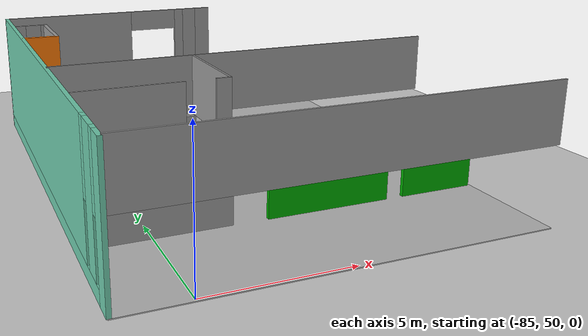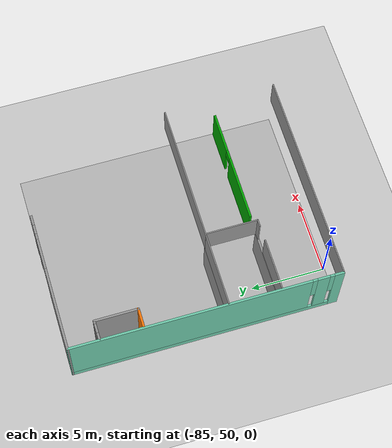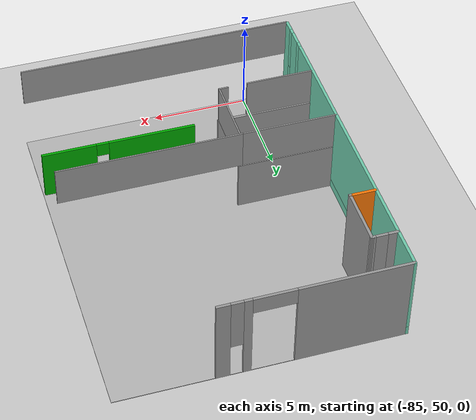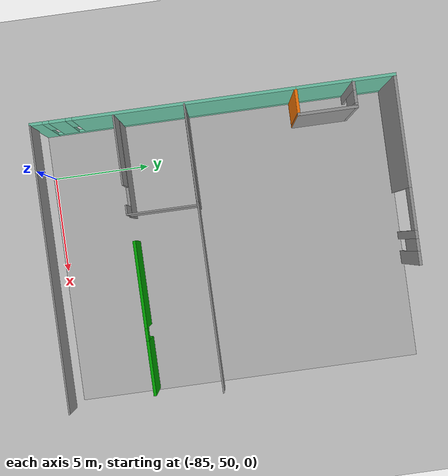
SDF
<sdf version="1.7">
 <world name="default">
  <model name="ground_plane">
   <static>1</static>
   <link name="link">
    <collision name="collision">
     <geometry><plane><normal>0 0 1</normal><size>100 100</size></plane></geometry>
     <surface><friction><ode><mu>100</mu><mu2>50</mu2></ode></friction></surface>
    </collision>
    <visual name="visual">
     <cast_shadows>0</cast_shadows>
     <geometry><plane><normal>0 0 1</normal><size>100 100</size></plane></geometry>
     <material>
      <script><uri>file://media/materials/scripts/gazebo.material</uri><name>Gazebo/Grey</name></script>
     </material>
    </visual>
   </link>
  </model>
  <model name="44444444443osrf_elevator">
   <link name="Wall_0">
    <pose>-7.17647 0.013004 0 0 -0 1.57174</pose>
    <visual name="Wall_0_Visual_1">
     <meta><layer>0</layer></meta>
     <pose>0.331828 0 0.25 0 -0 0</pose>
     <geometry><box><size>17.4519 0.15 0.5</size></box></geometry>
     <material>
      <script><uri>file://media/materials/scripts/gazebo.material</uri><name>Gazebo/Grey</name></script>
      <ambient>0.435294 0.796078 0.67451 1</ambient>
      <shader type="pixel"/>
     </material>
    </visual>
    <visual name="Wall_0_Visual_0">
     <meta><layer>0</layer></meta>
     <pose>-8.72596 0 2.4385 0 -0 0</pose>
     <geometry><box><size>0.663656 0.15 4.877</size></box></geometry>
     <material>
      <script><uri>file://media/materials/scripts/gazebo.material</uri><name>Gazebo/Grey</name></script>
      <ambient>0.435294 0.796078 0.67451 1</ambient>
      <shader type="pixel"/>
     </material>
    </visual>
    <visual name="Wall_0_Visual_3">
     <meta><layer>0</layer></meta>
     <pose>1.05709 0 2.6885 0 -0 0</pose>
     <geometry><box><size>16.0014 0.15 4.377</size></box></geometry>
     <material>
      <script><uri>file://media/materials/scripts/gazebo.material</uri><name>Gazebo/Grey</name></script>
      <ambient>0.435294 0.796078 0.67451 1</ambient>
      <shader type="pixel"/>
     </material>
    </visual>
    <visual name="Wall_0_Visual_2">
     <meta><layer>0</layer></meta>
     <pose>-7.67281 0 2.6885 0 -0 0</pose>
     <geometry><box><size>0.816657 0.15 4.377</size></box></geometry>
     <material>
      <script><uri>file://media/materials/scripts/gazebo.material</uri><name>Gazebo/Grey</name></script>
      <ambient>0.435294 0.796078 0.67451 1</ambient>
      <shader type="pixel"/>
     </material>
    </visual>
    <visual name="Wall_0_Visual_4">
     <meta><layer>0</layer></meta>
     <pose>-8.23763 0 3.6885 0 -0 0</pose>
     <geometry><box><size>0.313 0.15 2.377</size></box></geometry>
     <material>
      <script><uri>file://media/materials/scripts/gazebo.material</uri><name>Gazebo/Grey</name></script>
      <ambient>0.435294 0.796078 0.67451 1</ambient>
      <shader type="pixel"/>
     </material>
    </visual>
    <visual name="Wall_0_Visual_5">
     <meta><layer>0</layer></meta>
     <pose>-7.10405 0 3.6885 0 -0 0</pose>
     <geometry><box><size>0.320861 0.15 2.377</size></box></geometry>
     <material>
      <script><uri>file://media/materials/scripts/gazebo.material</uri><name>Gazebo/Grey</name></script>
      <ambient>0.435294 0.796078 0.67451 1</ambient>
      <shader type="pixel"/>
     </material>
    </visual>
    <collision name="Wall_0_Collision_0">
     <pose>-8.72596 0 2.4385 0 -0 0</pose>
     <geometry><box><size>0.663656 0.15 4.877</size></box></geometry>
     <surface>
      <friction>
       <ode><mu>1</mu><mu2>1</mu2><fdir1>0 0 0</fdir1><slip1>0</slip1><slip2>0</slip2></ode>
       <torsional>
        <coefficient>1</coefficient>
        <patch_radius>0</patch_radius>
        <surface_radius>0</surface_radius>
        <use_patch_radius>1</use_patch_radius>
        <ode><slip>0</slip></ode>
       </torsional>
      </friction>
      <bounce><restitution_coefficient>0</restitution_coefficient><threshold>1e+06</threshold></bounce>
      <contact>
       <collide_without_contact>0</collide_without_contact>
       <collide_without_contact_bitmask>1</collide_without_contact_bitmask>
       <collide_bitmask>1</collide_bitmask>
       <ode>
        <soft_cfm>0</soft_cfm>
        <soft_erp>0.2</soft_erp>
        <kp>1e+13</kp>
        <kd>1</kd>
        <max_vel>0.01</max_vel>
        <min_depth>0</min_depth>
       </ode>
       <bullet>
        <split_impulse>1</split_impulse>
        <split_impulse_penetration_threshold>-0.01</split_impulse_penetration_threshold>
        <soft_cfm>0</soft_cfm>
        <soft_erp>0.2</soft_erp>
        <kp>1e+13</kp>
        <kd>1</kd>
       </bullet>
      </contact>
     </surface>
    </collision>
    <collision name="Wall_0_Collision_5">
     <pose>-7.10405 0 3.6885 0 -0 0</pose>
     <geometry><box><size>0.320861 0.15 2.377</size></box></geometry>
     <surface>
      <friction>
       <ode><mu>1</mu><mu2>1</mu2><fdir1>0 0 0</fdir1><slip1>0</slip1><slip2>0</slip2></ode>
       <torsional>
        <coefficient>1</coefficient>
        <patch_radius>0</patch_radius>
        <surface_radius>0</surface_radius>
        <use_patch_radius>1</use_patch_radius>
        <ode><slip>0</slip></ode>
       </torsional>
      </friction>
      <bounce><restitution_coefficient>0</restitution_coefficient><threshold>1e+06</threshold></bounce>
      <contact>
       <collide_without_contact>0</collide_without_contact>
       <collide_without_contact_bitmask>1</collide_without_contact_bitmask>
       <collide_bitmask>1</collide_bitmask>
       <ode>
        <soft_cfm>0</soft_cfm>
        <soft_erp>0.2</soft_erp>
        <kp>1e+13</kp>
        <kd>1</kd>
        <max_vel>0.01</max_vel>
        <min_depth>0</min_depth>
       </ode>
       <bullet>
        <split_impulse>1</split_impulse>
        <split_impulse_penetration_threshold>-0.01</split_impulse_penetration_threshold>
        <soft_cfm>0</soft_cfm>
        <soft_erp>0.2</soft_erp>
        <kp>1e+13</kp>
        <kd>1</kd>
       </bullet>
      </contact>
     </surface>
    </collision>
    <collision name="Wall_0_Collision_1">
     <pose>0.331828 0 0.25 0 -0 0</pose>
     <geometry><box><size>17.4519 0.15 0.5</size></box></geometry>
     <surface>
      <friction>
       <ode><mu>1</mu><mu2>1</mu2><fdir1>0 0 0</fdir1><slip1>0</slip1><slip2>0</slip2></ode>
       <torsional>
        <coefficient>1</coefficient>
        <patch_radius>0</patch_radius>
        <surface_radius>0</surface_radius>
        <use_patch_radius>1</use_patch_radius>
        <ode><slip>0</slip></ode>
       </torsional>
      </friction>
      <bounce><restitution_coefficient>0</restitution_coefficient><threshold>1e+06</threshold></bounce>
      <contact>
       <collide_without_contact>0</collide_without_contact>
       <collide_without_contact_bitmask>1</collide_without_contact_bitmask>
       <collide_bitmask>1</collide_bitmask>
       <ode>
        <soft_cfm>0</soft_cfm>
        <soft_erp>0.2</soft_erp>
        <kp>1e+13</kp>
        <kd>1</kd>
        <max_vel>0.01</max_vel>
        <min_depth>0</min_depth>
       </ode>
       <bullet>
        <split_impulse>1</split_impulse>
        <split_impulse_penetration_threshold>-0.01</split_impulse_penetration_threshold>
        <soft_cfm>0</soft_cfm>
        <soft_erp>0.2</soft_erp>
        <kp>1e+13</kp>
        <kd>1</kd>
       </bullet>
      </contact>
     </surface>
    </collision>
    <collision name="Wall_0_Collision_2">
     <pose>-7.67281 0 2.6885 0 -0 0</pose>
     <geometry><box><size>0.816657 0.15 4.377</size></box></geometry>
     <surface>
      <friction>
       <ode><mu>1</mu><mu2>1</mu2><fdir1>0 0 0</fdir1><slip1>0</slip1><slip2>0</slip2></ode>
       <torsional>
        <coefficient>1</coefficient>
        <patch_radius>0</patch_radius>
        <surface_radius>0</surface_radius>
        <use_patch_radius>1</use_patch_radius>
        <ode><slip>0</slip></ode>
       </torsional>
      </friction>
      <bounce><restitution_coefficient>0</restitution_coefficient><threshold>1e+06</threshold></bounce>
      <contact>
       <collide_without_contact>0</collide_without_contact>
       <collide_without_contact_bitmask>1</collide_without_contact_bitmask>
       <collide_bitmask>1</collide_bitmask>
       <ode>
        <soft_cfm>0</soft_cfm>
        <soft_erp>0.2</soft_erp>
        <kp>1e+13</kp>
        <kd>1</kd>
        <max_vel>0.01</max_vel>
        <min_depth>0</min_depth>
       </ode>
       <bullet>
        <split_impulse>1</split_impulse>
        <split_impulse_penetration_threshold>-0.01</split_impulse_penetration_threshold>
        <soft_cfm>0</soft_cfm>
        <soft_erp>0.2</soft_erp>
        <kp>1e+13</kp>
        <kd>1</kd>
       </bullet>
      </contact>
     </surface>
    </collision>
    <collision name="Wall_0_Collision_3">
     <pose>1.05709 0 2.6885 0 -0 0</pose>
     <geometry><box><size>16.0014 0.15 4.377</size></box></geometry>
     <surface>
      <friction>
       <ode><mu>1</mu><mu2>1</mu2><fdir1>0 0 0</fdir1><slip1>0</slip1><slip2>0</slip2></ode>
       <torsional>
        <coefficient>1</coefficient>
        <patch_radius>0</patch_radius>
        <surface_radius>0</surface_radius>
        <use_patch_radius>1</use_patch_radius>
        <ode><slip>0</slip></ode>
       </torsional>
      </friction>
      <bounce><restitution_coefficient>0</restitution_coefficient><threshold>1e+06</threshold></bounce>
      <contact>
       <collide_without_contact>0</collide_without_contact>
       <collide_without_contact_bitmask>1</collide_without_contact_bitmask>
       <collide_bitmask>1</collide_bitmask>
       <ode>
        <soft_cfm>0</soft_cfm>
        <soft_erp>0.2</soft_erp>
        <kp>1e+13</kp>
        <kd>1</kd>
        <max_vel>0.01</max_vel>
        <min_depth>0</min_depth>
       </ode>
       <bullet>
        <split_impulse>1</split_impulse>
        <split_impulse_penetration_threshold>-0.01</split_impulse_penetration_threshold>
        <soft_cfm>0</soft_cfm>
        <soft_erp>0.2</soft_erp>
        <kp>1e+13</kp>
        <kd>1</kd>
       </bullet>
      </contact>
     </surface>
    </collision>
    <collision name="Wall_0_Collision_4">
     <pose>-8.23763 0 3.6885 0 -0 0</pose>
     <geometry><box><size>0.313 0.15 2.377</size></box></geometry>
     <surface>
      <friction>
       <ode><mu>1</mu><mu2>1</mu2><fdir1>0 0 0</fdir1><slip1>0</slip1><slip2>0</slip2></ode>
       <torsional>
        <coefficient>1</coefficient>
        <patch_radius>0</patch_radius>
        <surface_radius>0</surface_radius>
        <use_patch_radius>1</use_patch_radius>
        <ode><slip>0</slip></ode>
       </torsional>
      </friction>
      <bounce><restitution_coefficient>0</restitution_coefficient><threshold>1e+06</threshold></bounce>
      <contact>
       <collide_without_contact>0</collide_without_contact>
       <collide_without_contact_bitmask>1</collide_without_contact_bitmask>
       <collide_bitmask>1</collide_bitmask>
       <ode>
        <soft_cfm>0</soft_cfm>
        <soft_erp>0.2</soft_erp>
        <kp>1e+13</kp>
        <kd>1</kd>
        <max_vel>0.01</max_vel>
        <min_depth>0</min_depth>
       </ode>
       <bullet>
        <split_impulse>1</split_impulse>
        <split_impulse_penetration_threshold>-0.01</split_impulse_penetration_threshold>
        <soft_cfm>0</soft_cfm>
        <soft_erp>0.2</soft_erp>
        <kp>1e+13</kp>
        <kd>1</kd>
       </bullet>
      </contact>
     </surface>
    </collision>
   </link>
   <link name="Wall_10">
    <pose>3.11003 -4.9485 0 0 -0 0</pose>
    <visual name="Wall_10_Visual_0">
     <meta><layer>0</layer></meta>
     <pose>-1.73626 0 1.3715 0 -0 0</pose>
     <geometry><box><size>4.52747 0.15 2.743</size></box></geometry>
     <material>
      <script><uri>file://media/materials/scripts/gazebo.material</uri><name>Gazebo/Grey</name></script>
      <ambient>0 0.666667 0 1</ambient>
      <shader type="pixel"/>
     </material>
    </visual>
    <visual name="Wall_10_Visual_2">
     <meta><layer>0</layer></meta>
     <pose>0.85068 0 2.3715 0 -0 0</pose>
     <geometry><box><size>0.646413 0.15 0.743</size></box></geometry>
     <material>
      <script><uri>file://media/materials/scripts/gazebo.material</uri><name>Gazebo/Grey</name></script>
      <ambient>0 0.666667 0 1</ambient>
      <shader type="pixel"/>
     </material>
    </visual>
    <visual name="Wall_10_Visual_1">
     <meta><layer>0</layer></meta>
     <pose>2.58694 0 1.3715 0 -0 0</pose>
     <geometry><box><size>2.82611 0.15 2.743</size></box></geometry>
     <material>
      <script><uri>file://media/materials/scripts/gazebo.material</uri><name>Gazebo/Grey</name></script>
      <ambient>0 0.666667 0 1</ambient>
      <shader type="pixel"/>
     </material>
    </visual>
    <collision name="Wall_10_Collision_0">
     <pose>-1.73626 0 1.3715 0 -0 0</pose>
     <geometry><box><size>4.52747 0.15 2.743</size></box></geometry>
     <surface>
      <friction>
       <ode><mu>1</mu><mu2>1</mu2><fdir1>0 0 0</fdir1><slip1>0</slip1><slip2>0</slip2></ode>
       <torsional>
        <coefficient>1</coefficient>
        <patch_radius>0</patch_radius>
        <surface_radius>0</surface_radius>
        <use_patch_radius>1</use_patch_radius>
        <ode><slip>0</slip></ode>
       </torsional>
      </friction>
      <bounce><restitution_coefficient>0</restitution_coefficient><threshold>1e+06</threshold></bounce>
      <contact>
       <collide_without_contact>0</collide_without_contact>
       <collide_without_contact_bitmask>1</collide_without_contact_bitmask>
       <collide_bitmask>1</collide_bitmask>
       <ode>
        <soft_cfm>0</soft_cfm>
        <soft_erp>0.2</soft_erp>
        <kp>1e+13</kp>
        <kd>1</kd>
        <max_vel>0.01</max_vel>
        <min_depth>0</min_depth>
       </ode>
       <bullet>
        <split_impulse>1</split_impulse>
        <split_impulse_penetration_threshold>-0.01</split_impulse_penetration_threshold>
        <soft_cfm>0</soft_cfm>
        <soft_erp>0.2</soft_erp>
        <kp>1e+13</kp>
        <kd>1</kd>
       </bullet>
      </contact>
     </surface>
    </collision>
    <collision name="Wall_10_Collision_1">
     <pose>2.58694 0 1.3715 0 -0 0</pose>
     <geometry><box><size>2.82611 0.15 2.743</size></box></geometry>
     <surface>
      <friction>
       <ode><mu>1</mu><mu2>1</mu2><fdir1>0 0 0</fdir1><slip1>0</slip1><slip2>0</slip2></ode>
       <torsional>
        <coefficient>1</coefficient>
        <patch_radius>0</patch_radius>
        <surface_radius>0</surface_radius>
        <use_patch_radius>1</use_patch_radius>
        <ode><slip>0</slip></ode>
       </torsional>
      </friction>
      <bounce><restitution_coefficient>0</restitution_coefficient><threshold>1e+06</threshold></bounce>
      <contact>
       <collide_without_contact>0</collide_without_contact>
       <collide_without_contact_bitmask>1</collide_without_contact_bitmask>
       <collide_bitmask>1</collide_bitmask>
       <ode>
        <soft_cfm>0</soft_cfm>
        <soft_erp>0.2</soft_erp>
        <kp>1e+13</kp>
        <kd>1</kd>
        <max_vel>0.01</max_vel>
        <min_depth>0</min_depth>
       </ode>
       <bullet>
        <split_impulse>1</split_impulse>
        <split_impulse_penetration_threshold>-0.01</split_impulse_penetration_threshold>
        <soft_cfm>0</soft_cfm>
        <soft_erp>0.2</soft_erp>
        <kp>1e+13</kp>
        <kd>1</kd>
       </bullet>
      </contact>
     </surface>
    </collision>
    <collision name="Wall_10_Collision_2">
     <pose>0.85068 0 2.3715 0 -0 0</pose>
     <geometry><box><size>0.646413 0.15 0.743</size></box></geometry>
     <surface>
      <friction>
       <ode><mu>1</mu><mu2>1</mu2><fdir1>0 0 0</fdir1><slip1>0</slip1><slip2>0</slip2></ode>
       <torsional>
        <coefficient>1</coefficient>
        <patch_radius>0</patch_radius>
        <surface_radius>0</surface_radius>
        <use_patch_radius>1</use_patch_radius>
        <ode><slip>0</slip></ode>
       </torsional>
      </friction>
      <bounce><restitution_coefficient>0</restitution_coefficient><threshold>1e+06</threshold></bounce>
      <contact>
       <collide_without_contact>0</collide_without_contact>
       <collide_without_contact_bitmask>1</collide_without_contact_bitmask>
       <collide_bitmask>1</collide_bitmask>
       <ode>
        <soft_cfm>0</soft_cfm>
        <soft_erp>0.2</soft_erp>
        <kp>1e+13</kp>
        <kd>1</kd>
        <max_vel>0.01</max_vel>
        <min_depth>0</min_depth>
       </ode>
       <bullet>
        <split_impulse>1</split_impulse>
        <split_impulse_penetration_threshold>-0.01</split_impulse_penetration_threshold>
        <soft_cfm>0</soft_cfm>
        <soft_erp>0.2</soft_erp>
        <kp>1e+13</kp>
        <kd>1</kd>
       </bullet>
      </contact>
     </surface>
    </collision>
   </link>
   <link name="Wall_16">
    <pose>-4.68247 -1.4425 0 0 -0 0</pose>
    <visual name="Wall_16_Visual">
     <meta><layer>0</layer></meta>
     <pose>0 0 1.3715 0 -0 0</pose>
     <geometry><box><size>5.12727 0.15 2.743</size></box></geometry>
     <material>
      <script><uri>file://media/materials/scripts/gazebo.material</uri><name>Gazebo/Grey</name></script>
      <ambient>1 1 1 1</ambient>
      <shader type="pixel"/>
     </material>
    </visual>
    <collision name="Wall_16_Collision">
     <pose>0 0 1.3715 0 -0 0</pose>
     <geometry><box><size>5.12727 0.15 2.743</size></box></geometry>
     <surface>
      <friction>
       <ode><mu>1</mu><mu2>1</mu2><fdir1>0 0 0</fdir1><slip1>0</slip1><slip2>0</slip2></ode>
       <torsional>
        <coefficient>1</coefficient>
        <patch_radius>0</patch_radius>
        <surface_radius>0</surface_radius>
        <use_patch_radius>1</use_patch_radius>
        <ode><slip>0</slip></ode>
       </torsional>
      </friction>
      <bounce><restitution_coefficient>0</restitution_coefficient><threshold>1e+06</threshold></bounce>
      <contact>
       <collide_without_contact>0</collide_without_contact>
       <collide_without_contact_bitmask>1</collide_without_contact_bitmask>
       <collide_bitmask>1</collide_bitmask>
       <ode>
        <soft_cfm>0</soft_cfm>
        <soft_erp>0.2</soft_erp>
        <kp>1e+13</kp>
        <kd>1</kd>
        <max_vel>0.01</max_vel>
        <min_depth>0</min_depth>
       </ode>
       <bullet>
        <split_impulse>1</split_impulse>
        <split_impulse_penetration_threshold>-0.01</split_impulse_penetration_threshold>
        <soft_cfm>0</soft_cfm>
        <soft_erp>0.2</soft_erp>
        <kp>1e+13</kp>
        <kd>1</kd>
       </bullet>
      </contact>
     </surface>
    </collision>
   </link>
   <link name="Wall_18">
    <pose>-4.61297 -4.9275 0 0 -0 3.14159</pose>
    <visual name="Wall_18_Visual">
     <meta><layer>0</layer></meta>
     <pose>0 0 1.3715 0 -0 0</pose>
     <geometry><box><size>5 0.15 2.743</size></box></geometry>
     <material>
      <script><uri>file://media/materials/scripts/gazebo.material</uri><name>Gazebo/Grey</name></script>
      <ambient>1 1 1 1</ambient>
      <shader type="pixel"/>
     </material>
    </visual>
    <collision name="Wall_18_Collision">
     <pose>0 0 1.3715 0 -0 0</pose>
     <geometry><box><size>5 0.15 2.743</size></box></geometry>
     <surface>
      <friction>
       <ode><mu>1</mu><mu2>1</mu2><fdir1>0 0 0</fdir1><slip1>0</slip1><slip2>0</slip2></ode>
       <torsional>
        <coefficient>1</coefficient>
        <patch_radius>0</patch_radius>
        <surface_radius>0</surface_radius>
        <use_patch_radius>1</use_patch_radius>
        <ode><slip>0</slip></ode>
       </torsional>
      </friction>
      <bounce><restitution_coefficient>0</restitution_coefficient><threshold>1e+06</threshold></bounce>
      <contact>
       <collide_without_contact>0</collide_without_contact>
       <collide_without_contact_bitmask>1</collide_without_contact_bitmask>
       <collide_bitmask>1</collide_bitmask>
       <ode>
        <soft_cfm>0</soft_cfm>
        <soft_erp>0.2</soft_erp>
        <kp>1e+13</kp>
        <kd>1</kd>
        <max_vel>0.01</max_vel>
        <min_depth>0</min_depth>
       </ode>
       <bullet>
        <split_impulse>1</split_impulse>
        <split_impulse_penetration_threshold>-0.01</split_impulse_penetration_threshold>
        <soft_cfm>0</soft_cfm>
        <soft_erp>0.2</soft_erp>
        <kp>1e+13</kp>
        <kd>1</kd>
       </bullet>
      </contact>
     </surface>
    </collision>
   </link>
   <link name="Wall_29">
    <pose>-6.49697 4.1045 0 0 -0 0</pose>
    <visual name="Wall_29_Visual">
     <meta><layer>0</layer></meta>
     <pose>0 0 2.4385 0 -0 0</pose>
     <geometry><box><size>1.39187 0.15 4.877</size></box></geometry>
     <material>
      <script><uri>file://media/materials/scripts/gazebo.material</uri><name>Gazebo/Grey</name></script>
      <ambient>0.996078 0.47451 0.0196078 1</ambient>
      <shader type="pixel"/>
     </material>
    </visual>
    <collision name="Wall_29_Collision">
     <pose>0 0 2.4385 0 -0 0</pose>
     <geometry><box><size>1.39187 0.15 4.877</size></box></geometry>
     <surface>
      <friction>
       <ode><mu>1</mu><mu2>1</mu2><fdir1>0 0 0</fdir1><slip1>0</slip1><slip2>0</slip2></ode>
       <torsional>
        <coefficient>1</coefficient>
        <patch_radius>0</patch_radius>
        <surface_radius>0</surface_radius>
        <use_patch_radius>1</use_patch_radius>
        <ode><slip>0</slip></ode>
       </torsional>
      </friction>
      <bounce><restitution_coefficient>0</restitution_coefficient><threshold>1e+06</threshold></bounce>
      <contact>
       <collide_without_contact>0</collide_without_contact>
       <collide_without_contact_bitmask>1</collide_without_contact_bitmask>
       <collide_bitmask>1</collide_bitmask>
       <ode>
        <soft_cfm>0</soft_cfm>
        <soft_erp>0.2</soft_erp>
        <kp>1e+13</kp>
        <kd>1</kd>
        <max_vel>0.01</max_vel>
        <min_depth>0</min_depth>
       </ode>
       <bullet>
        <split_impulse>1</split_impulse>
        <split_impulse_penetration_threshold>-0.01</split_impulse_penetration_threshold>
        <soft_cfm>0</soft_cfm>
        <soft_erp>0.2</soft_erp>
        <kp>1e+13</kp>
        <kd>1</kd>
       </bullet>
      </contact>
     </surface>
    </collision>
   </link>
   <link name="Wall_30">
    <pose>-5.87597 5.5295 0 0 -0 1.5708</pose>
    <visual name="Wall_30_Visual">
     <meta><layer>0</layer></meta>
     <pose>0 0 2.4385 0 -0 0</pose>
     <geometry><box><size>3 0.15 4.877</size></box></geometry>
     <material>
      <script><uri>file://media/materials/scripts/gazebo.material</uri><name>Gazebo/Grey</name></script>
      <ambient>1 1 1 1</ambient>
      <shader type="pixel"/>
     </material>
    </visual>
    <collision name="Wall_30_Collision">
     <pose>0 0 2.4385 0 -0 0</pose>
     <geometry><box><size>3 0.15 4.877</size></box></geometry>
     <surface>
      <friction>
       <ode><mu>1</mu><mu2>1</mu2><fdir1>0 0 0</fdir1><slip1>0</slip1><slip2>0</slip2></ode>
       <torsional>
        <coefficient>1</coefficient>
        <patch_radius>0</patch_radius>
        <surface_radius>0</surface_radius>
        <use_patch_radius>1</use_patch_radius>
        <ode><slip>0</slip></ode>
       </torsional>
      </friction>
      <bounce><restitution_coefficient>0</restitution_coefficient><threshold>1e+06</threshold></bounce>
      <contact>
       <collide_without_contact>0</collide_without_contact>
       <collide_without_contact_bitmask>1</collide_without_contact_bitmask>
       <collide_bitmask>1</collide_bitmask>
       <ode>
        <soft_cfm>0</soft_cfm>
        <soft_erp>0.2</soft_erp>
        <kp>1e+13</kp>
        <kd>1</kd>
        <max_vel>0.01</max_vel>
        <min_depth>0</min_depth>
       </ode>
       <bullet>
        <split_impulse>1</split_impulse>
        <split_impulse_penetration_threshold>-0.01</split_impulse_penetration_threshold>
        <soft_cfm>0</soft_cfm>
        <soft_erp>0.2</soft_erp>
        <kp>1e+13</kp>
        <kd>1</kd>
       </bullet>
      </contact>
     </surface>
    </collision>
   </link>
   <link name="Wall_31">
    <pose>-6.50397 6.9525 0 0 0 -3.13841</pose>
    <visual name="Wall_31_Visual_0">
     <meta><layer>0</layer></meta>
     <pose>-0.567544 0 2.4385 0 -0 0</pose>
     <geometry><box><size>0.271575 0.15 4.877</size></box></geometry>
     <material>
      <script><uri>file://media/materials/scripts/gazebo.material</uri><name>Gazebo/Grey</name></script>
      <ambient>1 1 1 1</ambient>
      <shader type="pixel"/>
     </material>
    </visual>
    <visual name="Wall_31_Visual_1">
     <meta><layer>0</layer></meta>
     <pose>0.441678 0 2.4385 0 -0 0</pose>
     <geometry><box><size>0.523307 0.15 4.877</size></box></geometry>
     <material>
      <script><uri>file://media/materials/scripts/gazebo.material</uri><name>Gazebo/Grey</name></script>
      <ambient>1 1 1 1</ambient>
      <shader type="pixel"/>
     </material>
    </visual>
    <visual name="Wall_31_Visual_3">
     <meta><layer>0</layer></meta>
     <pose>-0.125866 0 3.4385 0 -0 0</pose>
     <geometry><box><size>0.611781 0.15 2.877</size></box></geometry>
     <material>
      <script><uri>file://media/materials/scripts/gazebo.material</uri><name>Gazebo/Grey</name></script>
      <ambient>1 1 1 1</ambient>
      <shader type="pixel"/>
     </material>
    </visual>
    <collision name="Wall_31_Collision_0">
     <pose>-0.567544 0 2.4385 0 -0 0</pose>
     <geometry><box><size>0.271575 0.15 4.877</size></box></geometry>
     <surface>
      <friction>
       <ode><mu>1</mu><mu2>1</mu2><fdir1>0 0 0</fdir1><slip1>0</slip1><slip2>0</slip2></ode>
       <torsional>
        <coefficient>1</coefficient>
        <patch_radius>0</patch_radius>
        <surface_radius>0</surface_radius>
        <use_patch_radius>1</use_patch_radius>
        <ode><slip>0</slip></ode>
       </torsional>
      </friction>
      <bounce><restitution_coefficient>0</restitution_coefficient><threshold>1e+06</threshold></bounce>
      <contact>
       <collide_without_contact>0</collide_without_contact>
       <collide_without_contact_bitmask>1</collide_without_contact_bitmask>
       <collide_bitmask>1</collide_bitmask>
       <ode>
        <soft_cfm>0</soft_cfm>
        <soft_erp>0.2</soft_erp>
        <kp>1e+13</kp>
        <kd>1</kd>
        <max_vel>0.01</max_vel>
        <min_depth>0</min_depth>
       </ode>
       <bullet>
        <split_impulse>1</split_impulse>
        <split_impulse_penetration_threshold>-0.01</split_impulse_penetration_threshold>
        <soft_cfm>0</soft_cfm>
        <soft_erp>0.2</soft_erp>
        <kp>1e+13</kp>
        <kd>1</kd>
       </bullet>
      </contact>
     </surface>
    </collision>
    <collision name="Wall_31_Collision_1">
     <pose>0.441678 0 2.4385 0 -0 0</pose>
     <geometry><box><size>0.523307 0.15 4.877</size></box></geometry>
     <surface>
      <friction>
       <ode><mu>1</mu><mu2>1</mu2><fdir1>0 0 0</fdir1><slip1>0</slip1><slip2>0</slip2></ode>
       <torsional>
        <coefficient>1</coefficient>
        <patch_radius>0</patch_radius>
        <surface_radius>0</surface_radius>
        <use_patch_radius>1</use_patch_radius>
        <ode><slip>0</slip></ode>
       </torsional>
      </friction>
      <bounce><restitution_coefficient>0</restitution_coefficient><threshold>1e+06</threshold></bounce>
      <contact>
       <collide_without_contact>0</collide_without_contact>
       <collide_without_contact_bitmask>1</collide_without_contact_bitmask>
       <collide_bitmask>1</collide_bitmask>
       <ode>
        <soft_cfm>0</soft_cfm>
        <soft_erp>0.2</soft_erp>
        <kp>1e+13</kp>
        <kd>1</kd>
        <max_vel>0.01</max_vel>
        <min_depth>0</min_depth>
       </ode>
       <bullet>
        <split_impulse>1</split_impulse>
        <split_impulse_penetration_threshold>-0.01</split_impulse_penetration_threshold>
        <soft_cfm>0</soft_cfm>
        <soft_erp>0.2</soft_erp>
        <kp>1e+13</kp>
        <kd>1</kd>
       </bullet>
      </contact>
     </surface>
    </collision>
    <collision name="Wall_31_Collision_3">
     <pose>-0.125866 0 3.4385 0 -0 0</pose>
     <geometry><box><size>0.611781 0.15 2.877</size></box></geometry>
     <surface>
      <friction>
       <ode><mu>1</mu><mu2>1</mu2><fdir1>0 0 0</fdir1><slip1>0</slip1><slip2>0</slip2></ode>
       <torsional>
        <coefficient>1</coefficient>
        <patch_radius>0</patch_radius>
        <surface_radius>0</surface_radius>
        <use_patch_radius>1</use_patch_radius>
        <ode><slip>0</slip></ode>
       </torsional>
      </friction>
      <bounce><restitution_coefficient>0</restitution_coefficient><threshold>1e+06</threshold></bounce>
      <contact>
       <collide_without_contact>0</collide_without_contact>
       <collide_without_contact_bitmask>1</collide_without_contact_bitmask>
       <collide_bitmask>1</collide_bitmask>
       <ode>
        <soft_cfm>0</soft_cfm>
        <soft_erp>0.2</soft_erp>
        <kp>1e+13</kp>
        <kd>1</kd>
        <max_vel>0.01</max_vel>
        <min_depth>0</min_depth>
       </ode>
       <bullet>
        <split_impulse>1</split_impulse>
        <split_impulse_penetration_threshold>-0.01</split_impulse_penetration_threshold>
        <soft_cfm>0</soft_cfm>
        <soft_erp>0.2</soft_erp>
        <kp>1e+13</kp>
        <kd>1</kd>
       </bullet>
      </contact>
     </surface>
    </collision>
   </link>
   <link name="Wall_35">
    <pose>-2.50997 8.9955 0 0 -0 0</pose>
    <visual name="Wall_35_Visual_0">
     <meta><layer>0</layer></meta>
     <pose>-1.92197 0 2.4385 0 -0 0</pose>
     <geometry><box><size>5.65606 0.15 4.877</size></box></geometry>
     <material>
      <script><uri>file://media/materials/scripts/gazebo.material</uri><name>Gazebo/Grey</name></script>
      <ambient>1 1 1 1</ambient>
      <shader type="pixel"/>
     </material>
    </visual>
    <visual name="Wall_35_Visual_1">
     <meta><layer>0</layer></meta>
     <pose>3.22541 0 2.4385 0 -0 0</pose>
     <geometry><box><size>0.406701 0.15 4.877</size></box></geometry>
     <material>
      <script><uri>file://media/materials/scripts/gazebo.material</uri><name>Gazebo/Grey</name></script>
      <ambient>1 1 1 1</ambient>
      <shader type="pixel"/>
     </material>
    </visual>
    <visual name="Wall_35_Visual_2">
     <meta><layer>0</layer></meta>
     <pose>4.40208 0 2.4385 0 -0 0</pose>
     <geometry><box><size>0.695843 0.15 4.877</size></box></geometry>
     <material>
      <script><uri>file://media/materials/scripts/gazebo.material</uri><name>Gazebo/Grey</name></script>
      <ambient>1 1 1 1</ambient>
      <shader type="pixel"/>
     </material>
    </visual>
    <visual name="Wall_35_Visual_5">
     <meta><layer>0</layer></meta>
     <pose>3.74146 0 3.4385 0 -0 0</pose>
     <geometry><box><size>0.625391 0.15 2.877</size></box></geometry>
     <material>
      <script><uri>file://media/materials/scripts/gazebo.material</uri><name>Gazebo/Grey</name></script>
      <ambient>1 1 1 1</ambient>
      <shader type="pixel"/>
     </material>
    </visual>
    <visual name="Wall_35_Visual_6">
     <meta><layer>0</layer></meta>
     <pose>1.96406 0 4.4385 0 -0 0</pose>
     <geometry><box><size>2.116 0.15 0.877</size></box></geometry>
     <material>
      <script><uri>file://media/materials/scripts/gazebo.material</uri><name>Gazebo/Grey</name></script>
      <ambient>1 1 1 1</ambient>
      <shader type="pixel"/>
     </material>
    </visual>
    <collision name="Wall_35_Collision_0">
     <pose>-1.92197 0 2.4385 0 -0 0</pose>
     <geometry><box><size>5.65606 0.15 4.877</size></box></geometry>
     <surface>
      <friction>
       <ode><mu>1</mu><mu2>1</mu2><fdir1>0 0 0</fdir1><slip1>0</slip1><slip2>0</slip2></ode>
       <torsional>
        <coefficient>1</coefficient>
        <patch_radius>0</patch_radius>
        <surface_radius>0</surface_radius>
        <use_patch_radius>1</use_patch_radius>
        <ode><slip>0</slip></ode>
       </torsional>
      </friction>
      <bounce><restitution_coefficient>0</restitution_coefficient><threshold>1e+06</threshold></bounce>
      <contact>
       <collide_without_contact>0</collide_without_contact>
       <collide_without_contact_bitmask>1</collide_without_contact_bitmask>
       <collide_bitmask>1</collide_bitmask>
       <ode>
        <soft_cfm>0</soft_cfm>
        <soft_erp>0.2</soft_erp>
        <kp>1e+13</kp>
        <kd>1</kd>
        <max_vel>0.01</max_vel>
        <min_depth>0</min_depth>
       </ode>
       <bullet>
        <split_impulse>1</split_impulse>
        <split_impulse_penetration_threshold>-0.01</split_impulse_penetration_threshold>
        <soft_cfm>0</soft_cfm>
        <soft_erp>0.2</soft_erp>
        <kp>1e+13</kp>
        <kd>1</kd>
       </bullet>
      </contact>
     </surface>
    </collision>
    <collision name="Wall_35_Collision_1">
     <pose>3.22541 0 2.4385 0 -0 0</pose>
     <geometry><box><size>0.406701 0.15 4.877</size></box></geometry>
     <surface>
      <friction>
       <ode><mu>1</mu><mu2>1</mu2><fdir1>0 0 0</fdir1><slip1>0</slip1><slip2>0</slip2></ode>
       <torsional>
        <coefficient>1</coefficient>
        <patch_radius>0</patch_radius>
        <surface_radius>0</surface_radius>
        <use_patch_radius>1</use_patch_radius>
        <ode><slip>0</slip></ode>
       </torsional>
      </friction>
      <bounce><restitution_coefficient>0</restitution_coefficient><threshold>1e+06</threshold></bounce>
      <contact>
       <collide_without_contact>0</collide_without_contact>
       <collide_without_contact_bitmask>1</collide_without_contact_bitmask>
       <collide_bitmask>1</collide_bitmask>
       <ode>
        <soft_cfm>0</soft_cfm>
        <soft_erp>0.2</soft_erp>
        <kp>1e+13</kp>
        <kd>1</kd>
        <max_vel>0.01</max_vel>
        <min_depth>0</min_depth>
       </ode>
       <bullet>
        <split_impulse>1</split_impulse>
        <split_impulse_penetration_threshold>-0.01</split_impulse_penetration_threshold>
        <soft_cfm>0</soft_cfm>
        <soft_erp>0.2</soft_erp>
        <kp>1e+13</kp>
        <kd>1</kd>
       </bullet>
      </contact>
     </surface>
    </collision>
    <collision name="Wall_35_Collision_2">
     <pose>4.40208 0 2.4385 0 -0 0</pose>
     <geometry><box><size>0.695843 0.15 4.877</size></box></geometry>
     <surface>
      <friction>
       <ode><mu>1</mu><mu2>1</mu2><fdir1>0 0 0</fdir1><slip1>0</slip1><slip2>0</slip2></ode>
       <torsional>
        <coefficient>1</coefficient>
        <patch_radius>0</patch_radius>
        <surface_radius>0</surface_radius>
        <use_patch_radius>1</use_patch_radius>
        <ode><slip>0</slip></ode>
       </torsional>
      </friction>
      <bounce><restitution_coefficient>0</restitution_coefficient><threshold>1e+06</threshold></bounce>
      <contact>
       <collide_without_contact>0</collide_without_contact>
       <collide_without_contact_bitmask>1</collide_without_contact_bitmask>
       <collide_bitmask>1</collide_bitmask>
       <ode>
        <soft_cfm>0</soft_cfm>
        <soft_erp>0.2</soft_erp>
        <kp>1e+13</kp>
        <kd>1</kd>
        <max_vel>0.01</max_vel>
        <min_depth>0</min_depth>
       </ode>
       <bullet>
        <split_impulse>1</split_impulse>
        <split_impulse_penetration_threshold>-0.01</split_impulse_penetration_threshold>
        <soft_cfm>0</soft_cfm>
        <soft_erp>0.2</soft_erp>
        <kp>1e+13</kp>
        <kd>1</kd>
       </bullet>
      </contact>
     </surface>
    </collision>
    <collision name="Wall_35_Collision_5">
     <pose>3.74146 0 3.4385 0 -0 0</pose>
     <geometry><box><size>0.625391 0.15 2.877</size></box></geometry>
     <surface>
      <friction>
       <ode><mu>1</mu><mu2>1</mu2><fdir1>0 0 0</fdir1><slip1>0</slip1><slip2>0</slip2></ode>
       <torsional>
        <coefficient>1</coefficient>
        <patch_radius>0</patch_radius>
        <surface_radius>0</surface_radius>
        <use_patch_radius>1</use_patch_radius>
        <ode><slip>0</slip></ode>
       </torsional>
      </friction>
      <bounce><restitution_coefficient>0</restitution_coefficient><threshold>1e+06</threshold></bounce>
      <contact>
       <collide_without_contact>0</collide_without_contact>
       <collide_without_contact_bitmask>1</collide_without_contact_bitmask>
       <collide_bitmask>1</collide_bitmask>
       <ode>
        <soft_cfm>0</soft_cfm>
        <soft_erp>0.2</soft_erp>
        <kp>1e+13</kp>
        <kd>1</kd>
        <max_vel>0.01</max_vel>
        <min_depth>0</min_depth>
       </ode>
       <bullet>
        <split_impulse>1</split_impulse>
        <split_impulse_penetration_threshold>-0.01</split_impulse_penetration_threshold>
        <soft_cfm>0</soft_cfm>
        <soft_erp>0.2</soft_erp>
        <kp>1e+13</kp>
        <kd>1</kd>
       </bullet>
      </contact>
     </surface>
    </collision>
    <collision name="Wall_35_Collision_6">
     <pose>1.96406 0 4.4385 0 -0 0</pose>
     <geometry><box><size>2.116 0.15 0.877</size></box></geometry>
     <surface>
      <friction>
       <ode><mu>1</mu><mu2>1</mu2><fdir1>0 0 0</fdir1><slip1>0</slip1><slip2>0</slip2></ode>
       <torsional>
        <coefficient>1</coefficient>
        <patch_radius>0</patch_radius>
        <surface_radius>0</surface_radius>
        <use_patch_radius>1</use_patch_radius>
        <ode><slip>0</slip></ode>
       </torsional>
      </friction>
      <bounce><restitution_coefficient>0</restitution_coefficient><threshold>1e+06</threshold></bounce>
      <contact>
       <collide_without_contact>0</collide_without_contact>
       <collide_without_contact_bitmask>1</collide_without_contact_bitmask>
       <collide_bitmask>1</collide_bitmask>
       <ode>
        <soft_cfm>0</soft_cfm>
        <soft_erp>0.2</soft_erp>
        <kp>1e+13</kp>
        <kd>1</kd>
        <max_vel>0.01</max_vel>
        <min_depth>0</min_depth>
       </ode>
       <bullet>
        <split_impulse>1</split_impulse>
        <split_impulse_penetration_threshold>-0.01</split_impulse_penetration_threshold>
        <soft_cfm>0</soft_cfm>
        <soft_erp>0.2</soft_erp>
        <kp>1e+13</kp>
        <kd>1</kd>
       </bullet>
      </contact>
     </surface>
    </collision>
   </link>
   <link name="floor1_part10">
    <pose>-2.39225 -4.89435 3.85794 1.5708 -0 0</pose>
    <visual name="visual">
     <meta><layer>1</layer></meta>
     <geometry><box><size>0.519866 2.0998 0.078</size></box></geometry>
     <material><script><name>Gazebo/Grey</name><uri>__default__</uri></script><shader type="pixel"/></material>
    </visual>
    <collision name="collision">
     <geometry><box><size>0.519866 2.0998 0.078</size></box></geometry>
     <surface>
      <friction>
       <ode><mu>1</mu><mu2>1</mu2><fdir1>0 0 0</fdir1><slip1>0</slip1><slip2>0</slip2></ode>
       <torsional>
        <coefficient>1</coefficient>
        <patch_radius>0</patch_radius>
        <surface_radius>0</surface_radius>
        <use_patch_radius>1</use_patch_radius>
        <ode><slip>0</slip></ode>
       </torsional>
      </friction>
      <bounce><restitution_coefficient>0</restitution_coefficient><threshold>1e+06</threshold></bounce>
      <contact>
       <collide_without_contact>0</collide_without_contact>
       <collide_without_contact_bitmask>1</collide_without_contact_bitmask>
       <collide_bitmask>1</collide_bitmask>
       <ode>
        <soft_cfm>0</soft_cfm>
        <soft_erp>0.2</soft_erp>
        <kp>1e+13</kp>
        <kd>1</kd>
        <max_vel>0.01</max_vel>
        <min_depth>0</min_depth>
       </ode>
       <bullet>
        <split_impulse>1</split_impulse>
        <split_impulse_penetration_threshold>-0.01</split_impulse_penetration_threshold>
        <soft_cfm>0</soft_cfm>
        <soft_erp>0.2</soft_erp>
        <kp>1e+13</kp>
        <kd>1</kd>
       </bullet>
      </contact>
     </surface>
    </collision>
   </link>
   <link name="floor1_part11">
    <pose>-2.17305 -3.18058 3.85794 1.5708 0 -1.5708</pose>
    <visual name="visual">
     <meta><layer>1</layer></meta>
     <geometry><box><size>3.4917 2.0998 0.078</size></box></geometry>
     <material><script><name>Gazebo/Grey</name><uri>__default__</uri></script><shader type="pixel"/></material>
    </visual>
    <collision name="collision">
     <geometry><box><size>3.4917 2.0998 0.078</size></box></geometry>
     <surface>
      <friction>
       <ode><mu>1</mu><mu2>1</mu2><fdir1>0 0 0</fdir1><slip1>0</slip1><slip2>0</slip2></ode>
       <torsional>
        <coefficient>1</coefficient>
        <patch_radius>0</patch_radius>
        <surface_radius>0</surface_radius>
        <use_patch_radius>1</use_patch_radius>
        <ode><slip>0</slip></ode>
       </torsional>
      </friction>
      <bounce><restitution_coefficient>0</restitution_coefficient><threshold>1e+06</threshold></bounce>
      <contact>
       <collide_without_contact>0</collide_without_contact>
       <collide_without_contact_bitmask>1</collide_without_contact_bitmask>
       <collide_bitmask>1</collide_bitmask>
       <ode>
        <soft_cfm>0</soft_cfm>
        <soft_erp>0.2</soft_erp>
        <kp>1e+13</kp>
        <kd>1</kd>
        <max_vel>0.01</max_vel>
        <min_depth>0</min_depth>
       </ode>
       <bullet>
        <split_impulse>1</split_impulse>
        <split_impulse_penetration_threshold>-0.01</split_impulse_penetration_threshold>
        <soft_cfm>0</soft_cfm>
        <soft_erp>0.2</soft_erp>
        <kp>1e+13</kp>
        <kd>1</kd>
       </bullet>
      </contact>
     </surface>
    </collision>
   </link>
   <link name="floor1_part5">
    <pose>-4.65046 -1.39728 3.85794 1.5708 -0 0</pose>
    <visual name="visual">
     <meta><layer>1</layer></meta>
     <geometry><box><size>5.03711 2.0998 0.078</size></box></geometry>
     <material><script><name>Gazebo/Grey</name><uri>__default__</uri></script><shader type="pixel"/></material>
    </visual>
    <collision name="collision">
     <geometry><box><size>5.03711 2.0998 0.078</size></box></geometry>
     <surface>
      <friction>
       <ode><mu>1</mu><mu2>1</mu2><fdir1>0 0 0</fdir1><slip1>0</slip1><slip2>0</slip2></ode>
       <torsional>
        <coefficient>1</coefficient>
        <patch_radius>0</patch_radius>
        <surface_radius>0</surface_radius>
        <use_patch_radius>1</use_patch_radius>
        <ode><slip>0</slip></ode>
       </torsional>
      </friction>
      <bounce><restitution_coefficient>0</restitution_coefficient><threshold>1e+06</threshold></bounce>
      <contact>
       <collide_without_contact>0</collide_without_contact>
       <collide_without_contact_bitmask>1</collide_without_contact_bitmask>
       <collide_bitmask>1</collide_bitmask>
       <ode>
        <soft_cfm>0</soft_cfm>
        <soft_erp>0.2</soft_erp>
        <kp>1e+13</kp>
        <kd>1</kd>
        <max_vel>0.01</max_vel>
        <min_depth>0</min_depth>
       </ode>
       <bullet>
        <split_impulse>1</split_impulse>
        <split_impulse_penetration_threshold>-0.01</split_impulse_penetration_threshold>
        <soft_cfm>0</soft_cfm>
        <soft_erp>0.2</soft_erp>
        <kp>1e+13</kp>
        <kd>1</kd>
       </bullet>
      </contact>
     </surface>
    </collision>
   </link>
   <link name="floor1_part7">
    <pose>2.39941 -1.39058 3.85828 1.5708 -0 0</pose>
    <visual name="visual">
     <meta><layer>1</layer></meta>
     <geometry><box><size>9.43026 2.0998 0.078</size></box></geometry>
     <material><script><name>Gazebo/Grey</name><uri>__default__</uri></script><shader type="pixel"/></material>
    </visual>
    <collision name="collision">
     <geometry><box><size>9.43026 2.0998 0.078</size></box></geometry>
     <surface>
      <friction>
       <ode><mu>1</mu><mu2>1</mu2><fdir1>0 0 0</fdir1><slip1>0</slip1><slip2>0</slip2></ode>
       <torsional>
        <coefficient>1</coefficient>
        <patch_radius>0</patch_radius>
        <surface_radius>0</surface_radius>
        <use_patch_radius>1</use_patch_radius>
        <ode><slip>0</slip></ode>
       </torsional>
      </friction>
      <bounce><restitution_coefficient>0</restitution_coefficient><threshold>1e+06</threshold></bounce>
      <contact>
       <collide_without_contact>0</collide_without_contact>
       <collide_without_contact_bitmask>1</collide_without_contact_bitmask>
       <collide_bitmask>1</collide_bitmask>
       <ode>
        <soft_cfm>0</soft_cfm>
        <soft_erp>0.2</soft_erp>
        <kp>1e+13</kp>
        <kd>1</kd>
        <max_vel>0.01</max_vel>
        <min_depth>0</min_depth>
       </ode>
       <bullet>
        <split_impulse>1</split_impulse>
        <split_impulse_penetration_threshold>-0.01</split_impulse_penetration_threshold>
        <soft_cfm>0</soft_cfm>
        <soft_erp>0.2</soft_erp>
        <kp>1e+13</kp>
        <kd>1</kd>
       </bullet>
      </contact>
     </surface>
    </collision>
   </link>
   <link name="floor1_part8">
    <pose>0 -9 3.86461 1.5708 -0 0</pose>
    <visual name="visual">
     <meta><layer>1</layer></meta>
     <geometry><box><size>14.2592 2.0998 0.078</size></box></geometry>
     <material><script><name>Gazebo/Grey</name><uri>__default__</uri></script><shader type="pixel"/></material>
    </visual>
    <collision name="collision">
     <geometry><box><size>14.2592 2.0998 0.078</size></box></geometry>
     <surface>
      <friction>
       <ode><mu>1</mu><mu2>1</mu2><fdir1>0 0 0</fdir1><slip1>0</slip1><slip2>0</slip2></ode>
       <torsional>
        <coefficient>1</coefficient>
        <patch_radius>0</patch_radius>
        <surface_radius>0</surface_radius>
        <use_patch_radius>1</use_patch_radius>
        <ode><slip>0</slip></ode>
       </torsional>
      </friction>
      <bounce><restitution_coefficient>0</restitution_coefficient><threshold>1e+06</threshold></bounce>
      <contact>
       <collide_without_contact>0</collide_without_contact>
       <collide_without_contact_bitmask>1</collide_without_contact_bitmask>
       <collide_bitmask>1</collide_bitmask>
       <ode>
        <soft_cfm>0</soft_cfm>
        <soft_erp>0.2</soft_erp>
        <kp>1e+13</kp>
        <kd>1</kd>
        <max_vel>0.01</max_vel>
        <min_depth>0</min_depth>
       </ode>
       <bullet>
        <split_impulse>1</split_impulse>
        <split_impulse_penetration_threshold>-0.01</split_impulse_penetration_threshold>
        <soft_cfm>0</soft_cfm>
        <soft_erp>0.2</soft_erp>
        <kp>1e+13</kp>
        <kd>1</kd>
       </bullet>
      </contact>
     </surface>
    </collision>
   </link>
   <link name="floor1_part9">
    <pose>-5.36806 -4.90906 3.85794 1.5708 -0 0</pose>
    <visual name="visual">
     <meta><layer>1</layer></meta>
     <geometry><box><size>3.47446 2.0998 0.078</size></box></geometry>
     <material><script><name>Gazebo/Grey</name><uri>__default__</uri></script><shader type="pixel"/></material>
    </visual>
    <collision name="collision">
     <geometry><box><size>3.47446 2.0998 0.078</size></box></geometry>
     <surface>
      <friction>
       <ode><mu>1</mu><mu2>1</mu2><fdir1>0 0 0</fdir1><slip1>0</slip1><slip2>0</slip2></ode>
       <torsional>
        <coefficient>1</coefficient>
        <patch_radius>0</patch_radius>
        <surface_radius>0</surface_radius>
        <use_patch_radius>1</use_patch_radius>
        <ode><slip>0</slip></ode>
       </torsional>
      </friction>
      <bounce><restitution_coefficient>0</restitution_coefficient><threshold>1e+06</threshold></bounce>
      <contact>
       <collide_without_contact>0</collide_without_contact>
       <collide_without_contact_bitmask>1</collide_without_contact_bitmask>
       <collide_bitmask>1</collide_bitmask>
       <ode>
        <soft_cfm>0</soft_cfm>
        <soft_erp>0.2</soft_erp>
        <kp>1e+13</kp>
        <kd>1</kd>
        <max_vel>0.01</max_vel>
        <min_depth>0</min_depth>
       </ode>
       <bullet>
        <split_impulse>1</split_impulse>
        <split_impulse_penetration_threshold>-0.01</split_impulse_penetration_threshold>
        <soft_cfm>0</soft_cfm>
        <soft_erp>0.2</soft_erp>
        <kp>1e+13</kp>
        <kd>1</kd>
       </bullet>
      </contact>
     </surface>
    </collision>
   </link>
   <link name="ground_floor">
    <pose>0 0 -0.062833 0 -0 0</pose>
    <visual name="visual">
     <geometry><box><size>14.4 18.1 0.15</size></box></geometry>
     <material><shader type="pixel"/></material>
    </visual>
    <collision name="collision">
     <geometry><box><size>14.4 18.1 0.15</size></box></geometry>
     <surface>
      <friction>
       <ode><mu>1</mu><mu2>1</mu2><fdir1>0 0 0</fdir1><slip1>0</slip1><slip2>0</slip2></ode>
       <torsional>
        <coefficient>1</coefficient>
        <patch_radius>0</patch_radius>
        <surface_radius>0</surface_radius>
        <use_patch_radius>1</use_patch_radius>
        <ode><slip>0</slip></ode>
       </torsional>
      </friction>
      <bounce><restitution_coefficient>0</restitution_coefficient><threshold>1e+06</threshold></bounce>
      <contact>
       <collide_without_contact>0</collide_without_contact>
       <collide_without_contact_bitmask>1</collide_without_contact_bitmask>
       <collide_bitmask>1</collide_bitmask>
       <ode>
        <soft_cfm>0</soft_cfm>
        <soft_erp>0.2</soft_erp>
        <kp>1e+13</kp>
        <kd>1</kd>
        <max_vel>0.01</max_vel>
        <min_depth>0</min_depth>
       </ode>
       <bullet>
        <split_impulse>1</split_impulse>
        <split_impulse_penetration_threshold>-0.01</split_impulse_penetration_threshold>
        <soft_cfm>0</soft_cfm>
        <soft_erp>0.2</soft_erp>
        <kp>1e+13</kp>
        <kd>1</kd>
       </bullet>
      </contact>
     </surface>
    </collision>
   </link>
   <static>1</static>
   <pose>-80.1839 58.9376 0 0 -0 0</pose>
  </model>
 </world>
</sdf>
